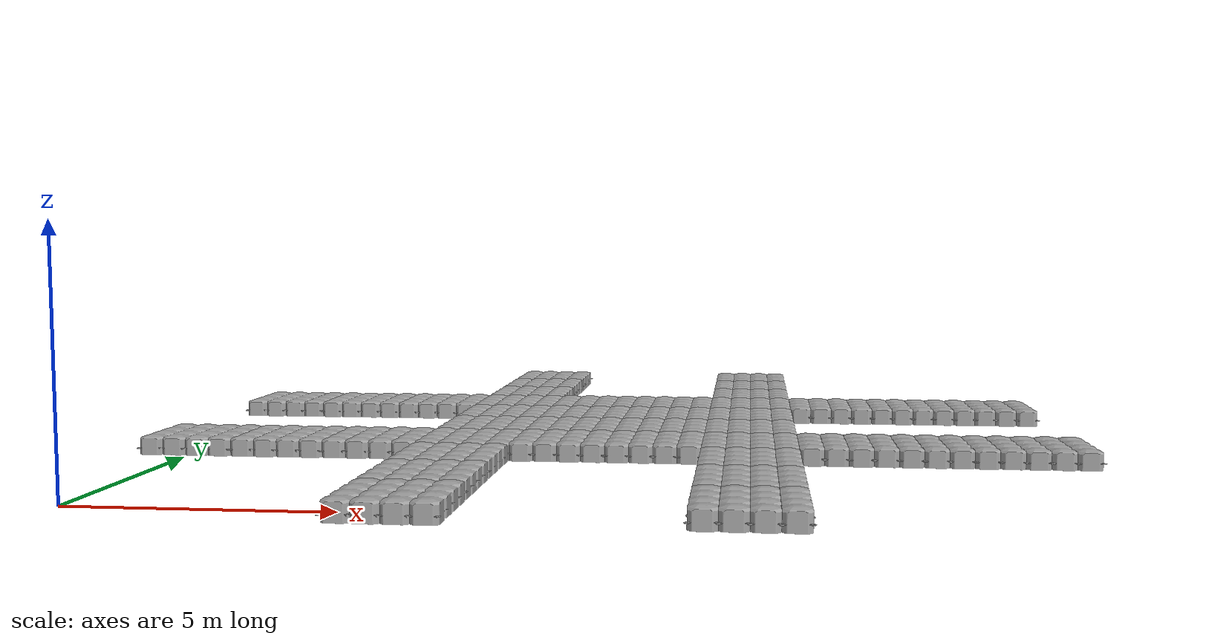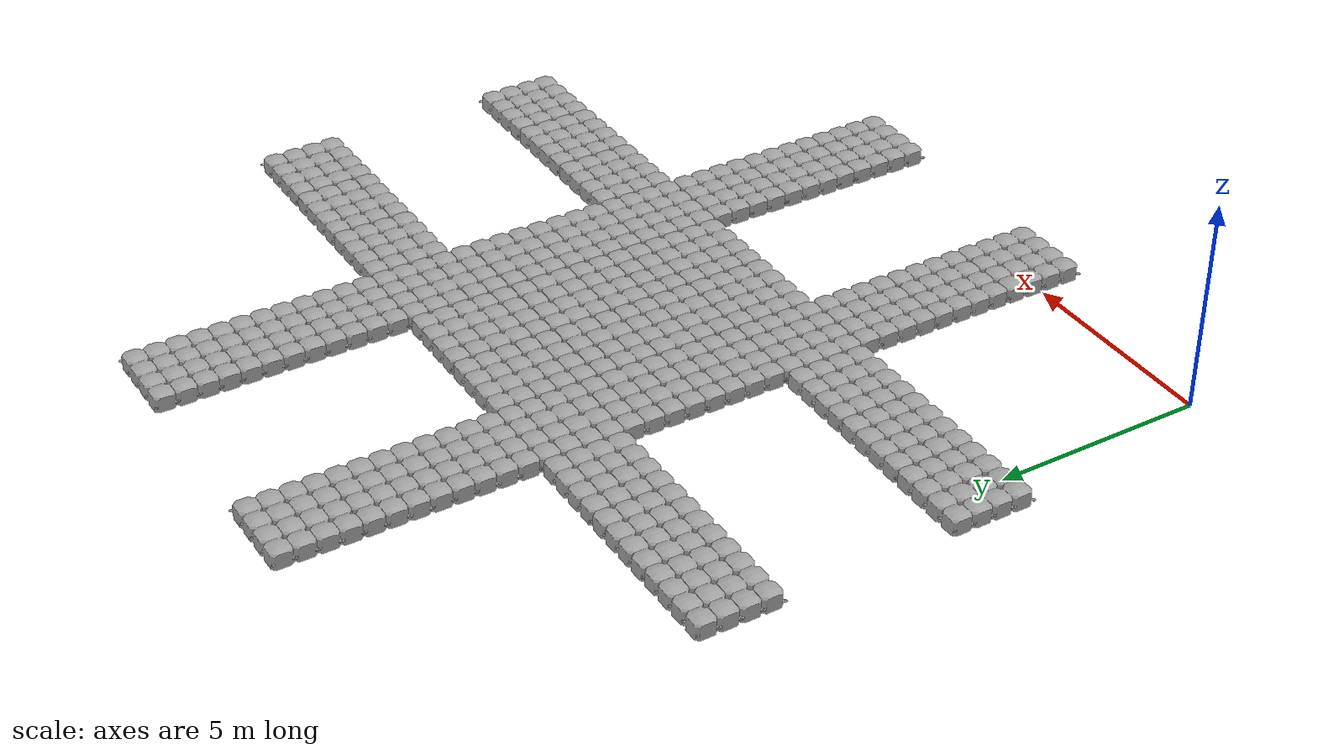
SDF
<?xml version="1.0" ?>
  <sdf version="1.6">
  <!-- Important: This file is generated. DO NOT EDIT! -->
  <model name="rxi_dock">

    <!-- Row 0 -->
    <include>
      <name>dock_block_0_3</name>
      <pose>0 6 0.25 0 0 0</pose>
        <uri>model://dock_block_4x4_dynamic</uri>
    </include>
    <include>
      <name>dock_block_0_6</name>
      <pose>0 12 0.25 0 0 0</pose>
        <uri>model://dock_block_4x4_dynamic</uri>
    </include>

    <!-- Row 1 -->
    <include>
      <name>dock_block_1_3</name>
      <pose>2 6 0.25 0 0 0</pose>
        <uri>model://dock_block_4x4_dynamic</uri>
    </include>
    <include>
      <name>dock_block_1_6</name>
      <pose>2 12 0.25 0 0 0</pose>
        <uri>model://dock_block_4x4_dynamic</uri>
    </include>

    <!-- Row 2 -->
    <include>
      <name>dock_block_2_3</name>
      <pose>4 6 0.25 0 0 0</pose>
        <uri>model://dock_block_4x4_dynamic</uri>
    </include>
    <include>
      <name>dock_block_2_6</name>
      <pose>4 12 0.25 0 0 0</pose>
        <uri>model://dock_block_4x4_dynamic</uri>
    </include>

    <!-- Row 3 -->
    <include>
      <name>dock_block_3_0</name>
      <pose>6 0 0.25 0 0 0</pose>
        <uri>model://dock_block_4x4_dynamic</uri>
    </include>
    <include>
      <name>dock_block_3_1</name>
      <pose>6 2 0.25 0 0 0</pose>
        <uri>model://dock_block_4x4_dynamic</uri>
    </include>
    <include>
      <name>dock_block_3_2</name>
      <pose>6 4 0.25 0 0 0</pose>
        <uri>model://dock_block_4x4_dynamic</uri>
    </include>
    <include>
      <name>dock_block_3_3</name>
      <pose>6 6 0.25 0 0 0</pose>
        <uri>model://dock_block_4x4_dynamic</uri>
    </include>
    <include>
      <name>dock_block_3_4</name>
      <pose>6 8 0.25 0 0 0</pose>
        <uri>model://dock_block_4x4_dynamic</uri>
    </include>
    <include>
      <name>dock_block_3_5</name>
      <pose>6 10 0.25 0 0 0</pose>
        <uri>model://dock_block_4x4_dynamic</uri>
    </include>
    <include>
      <name>dock_block_3_6</name>
      <pose>6 12 0.25 0 0 0</pose>
        <uri>model://dock_block_4x4_dynamic</uri>
    </include>
    <include>
      <name>dock_block_3_7</name>
      <pose>6 14 0.25 0 0 0</pose>
        <uri>model://dock_block_4x4_dynamic</uri>
    </include>
    <include>
      <name>dock_block_3_8</name>
      <pose>6 16 0.25 0 0 0</pose>
        <uri>model://dock_block_4x4_dynamic</uri>
    </include>
    <include>
      <name>dock_block_3_9</name>
      <pose>6 18 0.25 0 0 0</pose>
        <uri>model://dock_block_4x4_dynamic</uri>
    </include>

    <!-- Row 4 -->
    <include>
      <name>dock_block_4_3</name>
      <pose>8 6 0.25 0 0 0</pose>
        <uri>model://dock_block_4x4_dynamic</uri>
    </include>
    <include>
      <name>dock_block_4_4</name>
      <pose>8 8 0.25 0 0 0</pose>
        <uri>model://dock_block_4x4_dynamic</uri>
    </include>
    <include>
      <name>dock_block_4_5</name>
      <pose>8 10 0.25 0 0 0</pose>
        <uri>model://dock_block_4x4_dynamic</uri>
    </include>
    <include>
      <name>dock_block_4_6</name>
      <pose>8 12 0.25 0 0 0</pose>
        <uri>model://dock_block_4x4_dynamic</uri>
    </include>

    <!-- Row 5 -->
    <include>
      <name>dock_block_5_3</name>
      <pose>10 6 0.25 0 0 0</pose>
        <uri>model://dock_block_4x4_dynamic</uri>
    </include>
    <include>
      <name>dock_block_5_4</name>
      <pose>10 8 0.25 0 0 0</pose>
        <uri>model://dock_block_4x4_dynamic</uri>
    </include>
    <include>
      <name>dock_block_5_5</name>
      <pose>10 10 0.25 0 0 0</pose>
        <uri>model://dock_block_4x4_dynamic</uri>
    </include>
    <include>
      <name>dock_block_5_6</name>
      <pose>10 12 0.25 0 0 0</pose>
        <uri>model://dock_block_4x4_dynamic</uri>
    </include>

    <!-- Row 6 -->
    <include>
      <name>dock_block_6_0</name>
      <pose>12 0 0.25 0 0 0</pose>
        <uri>model://dock_block_4x4_dynamic</uri>
    </include>
    <include>
      <name>dock_block_6_1</name>
      <pose>12 2 0.25 0 0 0</pose>
        <uri>model://dock_block_4x4_dynamic</uri>
    </include>
    <include>
      <name>dock_block_6_2</name>
      <pose>12 4 0.25 0 0 0</pose>
        <uri>model://dock_block_4x4_dynamic</uri>
    </include>
    <include>
      <name>dock_block_6_3</name>
      <pose>12 6 0.25 0 0 0</pose>
        <uri>model://dock_block_4x4_dynamic</uri>
    </include>
    <include>
      <name>dock_block_6_4</name>
      <pose>12 8 0.25 0 0 0</pose>
        <uri>model://dock_block_4x4_dynamic</uri>
    </include>
    <include>
      <name>dock_block_6_5</name>
      <pose>12 10 0.25 0 0 0</pose>
        <uri>model://dock_block_4x4_dynamic</uri>
    </include>
    <include>
      <name>dock_block_6_6</name>
      <pose>12 12 0.25 0 0 0</pose>
        <uri>model://dock_block_4x4_dynamic</uri>
    </include>
    <include>
      <name>dock_block_6_7</name>
      <pose>12 14 0.25 0 0 0</pose>
        <uri>model://dock_block_4x4_dynamic</uri>
    </include>
    <include>
      <name>dock_block_6_8</name>
      <pose>12 16 0.25 0 0 0</pose>
        <uri>model://dock_block_4x4_dynamic</uri>
    </include>
    <include>
      <name>dock_block_6_9</name>
      <pose>12 18 0.25 0 0 0</pose>
        <uri>model://dock_block_4x4_dynamic</uri>
    </include>

    <!-- Row 7 -->
    <include>
      <name>dock_block_7_3</name>
      <pose>14 6 0.25 0 0 0</pose>
        <uri>model://dock_block_4x4_dynamic</uri>
    </include>
    <include>
      <name>dock_block_7_6</name>
      <pose>14 12 0.25 0 0 0</pose>
        <uri>model://dock_block_4x4_dynamic</uri>
    </include>

    <!-- Row 8 -->
    <include>
      <name>dock_block_8_3</name>
      <pose>16 6 0.25 0 0 0</pose>
        <uri>model://dock_block_4x4_dynamic</uri>
    </include>
    <include>
      <name>dock_block_8_6</name>
      <pose>16 12 0.25 0 0 0</pose>
        <uri>model://dock_block_4x4_dynamic</uri>
    </include>

    <!-- Row 9 -->
    <include>
      <name>dock_block_9_3</name>
      <pose>18 6 0.25 0 0 0</pose>
        <uri>model://dock_block_4x4_dynamic</uri>
    </include>
    <include>
      <name>dock_block_9_6</name>
      <pose>18 12 0.25 0 0 0</pose>
        <uri>model://dock_block_4x4_dynamic</uri>
    </include>

    <!-- Add joints across rows -->

    <!-- Row 0 -->

    <!-- Row 1 -->

    <!-- Row 2 -->

    <!-- Row 3 -->
    <joint name="3_0_to_3_1" type="revolute">
      <pose> 0  1.0 0 0 0 0</pose>
      <parent>dock_block_3_1::link</parent>
      <child>dock_block_3_0::link</child>
      <axis>
        <limit>
          <lower>-0.1</lower>
          <upper>0.1</upper>
        </limit>
        <xyz>1 0 0</xyz>
      </axis>
    </joint>
    <joint name="3_1_to_3_2" type="revolute">
      <pose> 0  1.0 0 0 0 0</pose>
      <parent>dock_block_3_2::link</parent>
      <child>dock_block_3_1::link</child>
      <axis>
        <limit>
          <lower>-0.1</lower>
          <upper>0.1</upper>
        </limit>
        <xyz>1 0 0</xyz>
      </axis>
    </joint>
    <joint name="3_2_to_3_3" type="revolute">
      <pose> 0  1.0 0 0 0 0</pose>
      <parent>dock_block_3_3::link</parent>
      <child>dock_block_3_2::link</child>
      <axis>
        <limit>
          <lower>-0.1</lower>
          <upper>0.1</upper>
        </limit>
        <xyz>1 0 0</xyz>
      </axis>
    </joint>
    <joint name="3_3_to_3_4" type="revolute">
      <pose> 0  1.0 0 0 0 0</pose>
      <parent>dock_block_3_4::link</parent>
      <child>dock_block_3_3::link</child>
      <axis>
        <limit>
          <lower>-0.1</lower>
          <upper>0.1</upper>
        </limit>
        <xyz>1 0 0</xyz>
      </axis>
    </joint>
    <joint name="3_4_to_3_5" type="revolute">
      <pose> 0  1.0 0 0 0 0</pose>
      <parent>dock_block_3_5::link</parent>
      <child>dock_block_3_4::link</child>
      <axis>
        <limit>
          <lower>-0.1</lower>
          <upper>0.1</upper>
        </limit>
        <xyz>1 0 0</xyz>
      </axis>
    </joint>
    <joint name="3_5_to_3_6" type="revolute">
      <pose> 0  1.0 0 0 0 0</pose>
      <parent>dock_block_3_6::link</parent>
      <child>dock_block_3_5::link</child>
      <axis>
        <limit>
          <lower>-0.1</lower>
          <upper>0.1</upper>
        </limit>
        <xyz>1 0 0</xyz>
      </axis>
    </joint>
    <joint name="3_6_to_3_7" type="revolute">
      <pose> 0  1.0 0 0 0 0</pose>
      <parent>dock_block_3_7::link</parent>
      <child>dock_block_3_6::link</child>
      <axis>
        <limit>
          <lower>-0.1</lower>
          <upper>0.1</upper>
        </limit>
        <xyz>1 0 0</xyz>
      </axis>
    </joint>
    <joint name="3_7_to_3_8" type="revolute">
      <pose> 0  1.0 0 0 0 0</pose>
      <parent>dock_block_3_8::link</parent>
      <child>dock_block_3_7::link</child>
      <axis>
        <limit>
          <lower>-0.1</lower>
          <upper>0.1</upper>
        </limit>
        <xyz>1 0 0</xyz>
      </axis>
    </joint>
    <joint name="3_8_to_3_9" type="revolute">
      <pose> 0  1.0 0 0 0 0</pose>
      <parent>dock_block_3_9::link</parent>
      <child>dock_block_3_8::link</child>
      <axis>
        <limit>
          <lower>-0.1</lower>
          <upper>0.1</upper>
        </limit>
        <xyz>1 0 0</xyz>
      </axis>
    </joint>

    <!-- Row 4 -->
    <joint name="4_3_to_4_4" type="revolute">
      <pose> 0  1.0 0 0 0 0</pose>
      <parent>dock_block_4_4::link</parent>
      <child>dock_block_4_3::link</child>
      <axis>
        <limit>
          <lower>-0.1</lower>
          <upper>0.1</upper>
        </limit>
        <xyz>1 0 0</xyz>
      </axis>
    </joint>
    <joint name="4_4_to_4_5" type="revolute">
      <pose> 0  1.0 0 0 0 0</pose>
      <parent>dock_block_4_5::link</parent>
      <child>dock_block_4_4::link</child>
      <axis>
        <limit>
          <lower>-0.1</lower>
          <upper>0.1</upper>
        </limit>
        <xyz>1 0 0</xyz>
      </axis>
    </joint>
    <joint name="4_5_to_4_6" type="revolute">
      <pose> 0  1.0 0 0 0 0</pose>
      <parent>dock_block_4_6::link</parent>
      <child>dock_block_4_5::link</child>
      <axis>
        <limit>
          <lower>-0.1</lower>
          <upper>0.1</upper>
        </limit>
        <xyz>1 0 0</xyz>
      </axis>
    </joint>

    <!-- Row 5 -->
    <joint name="5_3_to_5_4" type="revolute">
      <pose> 0  1.0 0 0 0 0</pose>
      <parent>dock_block_5_4::link</parent>
      <child>dock_block_5_3::link</child>
      <axis>
        <limit>
          <lower>-0.1</lower>
          <upper>0.1</upper>
        </limit>
        <xyz>1 0 0</xyz>
      </axis>
    </joint>
    <joint name="5_4_to_5_5" type="revolute">
      <pose> 0  1.0 0 0 0 0</pose>
      <parent>dock_block_5_5::link</parent>
      <child>dock_block_5_4::link</child>
      <axis>
        <limit>
          <lower>-0.1</lower>
          <upper>0.1</upper>
        </limit>
        <xyz>1 0 0</xyz>
      </axis>
    </joint>
    <joint name="5_5_to_5_6" type="revolute">
      <pose> 0  1.0 0 0 0 0</pose>
      <parent>dock_block_5_6::link</parent>
      <child>dock_block_5_5::link</child>
      <axis>
        <limit>
          <lower>-0.1</lower>
          <upper>0.1</upper>
        </limit>
        <xyz>1 0 0</xyz>
      </axis>
    </joint>

    <!-- Row 6 -->
    <joint name="6_0_to_6_1" type="revolute">
      <pose> 0  1.0 0 0 0 0</pose>
      <parent>dock_block_6_1::link</parent>
      <child>dock_block_6_0::link</child>
      <axis>
        <limit>
          <lower>-0.1</lower>
          <upper>0.1</upper>
        </limit>
        <xyz>1 0 0</xyz>
      </axis>
    </joint>
    <joint name="6_1_to_6_2" type="revolute">
      <pose> 0  1.0 0 0 0 0</pose>
      <parent>dock_block_6_2::link</parent>
      <child>dock_block_6_1::link</child>
      <axis>
        <limit>
          <lower>-0.1</lower>
          <upper>0.1</upper>
        </limit>
        <xyz>1 0 0</xyz>
      </axis>
    </joint>
    <joint name="6_2_to_6_3" type="revolute">
      <pose> 0  1.0 0 0 0 0</pose>
      <parent>dock_block_6_3::link</parent>
      <child>dock_block_6_2::link</child>
      <axis>
        <limit>
          <lower>-0.1</lower>
          <upper>0.1</upper>
        </limit>
        <xyz>1 0 0</xyz>
      </axis>
    </joint>
    <joint name="6_3_to_6_4" type="revolute">
      <pose> 0  1.0 0 0 0 0</pose>
      <parent>dock_block_6_4::link</parent>
      <child>dock_block_6_3::link</child>
      <axis>
        <limit>
          <lower>-0.1</lower>
          <upper>0.1</upper>
        </limit>
        <xyz>1 0 0</xyz>
      </axis>
    </joint>
    <joint name="6_4_to_6_5" type="revolute">
      <pose> 0  1.0 0 0 0 0</pose>
      <parent>dock_block_6_5::link</parent>
      <child>dock_block_6_4::link</child>
      <axis>
        <limit>
          <lower>-0.1</lower>
          <upper>0.1</upper>
        </limit>
        <xyz>1 0 0</xyz>
      </axis>
    </joint>
    <joint name="6_5_to_6_6" type="revolute">
      <pose> 0  1.0 0 0 0 0</pose>
      <parent>dock_block_6_6::link</parent>
      <child>dock_block_6_5::link</child>
      <axis>
        <limit>
          <lower>-0.1</lower>
          <upper>0.1</upper>
        </limit>
        <xyz>1 0 0</xyz>
      </axis>
    </joint>
    <joint name="6_6_to_6_7" type="revolute">
      <pose> 0  1.0 0 0 0 0</pose>
      <parent>dock_block_6_7::link</parent>
      <child>dock_block_6_6::link</child>
      <axis>
        <limit>
          <lower>-0.1</lower>
          <upper>0.1</upper>
        </limit>
        <xyz>1 0 0</xyz>
      </axis>
    </joint>
    <joint name="6_7_to_6_8" type="revolute">
      <pose> 0  1.0 0 0 0 0</pose>
      <parent>dock_block_6_8::link</parent>
      <child>dock_block_6_7::link</child>
      <axis>
        <limit>
          <lower>-0.1</lower>
          <upper>0.1</upper>
        </limit>
        <xyz>1 0 0</xyz>
      </axis>
    </joint>
    <joint name="6_8_to_6_9" type="revolute">
      <pose> 0  1.0 0 0 0 0</pose>
      <parent>dock_block_6_9::link</parent>
      <child>dock_block_6_8::link</child>
      <axis>
        <limit>
          <lower>-0.1</lower>
          <upper>0.1</upper>
        </limit>
        <xyz>1 0 0</xyz>
      </axis>
    </joint>

    <!-- Row 7 -->

    <!-- Row 8 -->

    <!-- Row 9 -->

    <!-- Add joints across columns -->

    <!-- Column 0 -->

    <!-- Column 1 -->

    <!-- Column 2 -->

    <!-- Column 3 -->
    <joint name="1_3_to_0_3" type="revolute">
      <pose> 1.0 0 0 0 0 0</pose>
      <parent>dock_block_1_3::link</parent>
      <child>dock_block_0_3::link</child>
      <axis>
        <limit>
          <lower>-0.1</lower>
          <upper>0.1</upper>
        </limit>
        <xyz>0 1 0</xyz>
      </axis>
    </joint>
    <joint name="2_3_to_1_3" type="revolute">
      <pose> 1.0 0 0 0 0 0</pose>
      <parent>dock_block_2_3::link</parent>
      <child>dock_block_1_3::link</child>
      <axis>
        <limit>
          <lower>-0.1</lower>
          <upper>0.1</upper>
        </limit>
        <xyz>0 1 0</xyz>
      </axis>
    </joint>
    <joint name="3_3_to_2_3" type="revolute">
      <pose> 1.0 0 0 0 0 0</pose>
      <parent>dock_block_3_3::link</parent>
      <child>dock_block_2_3::link</child>
      <axis>
        <limit>
          <lower>-0.1</lower>
          <upper>0.1</upper>
        </limit>
        <xyz>0 1 0</xyz>
      </axis>
    </joint>
    <joint name="4_3_to_3_3" type="revolute">
      <pose> 1.0 0 0 0 0 0</pose>
      <parent>dock_block_4_3::link</parent>
      <child>dock_block_3_3::link</child>
      <axis>
        <limit>
          <lower>-0.1</lower>
          <upper>0.1</upper>
        </limit>
        <xyz>0 1 0</xyz>
      </axis>
    </joint>
    <joint name="5_3_to_4_3" type="revolute">
      <pose> 1.0 0 0 0 0 0</pose>
      <parent>dock_block_5_3::link</parent>
      <child>dock_block_4_3::link</child>
      <axis>
        <limit>
          <lower>-0.1</lower>
          <upper>0.1</upper>
        </limit>
        <xyz>0 1 0</xyz>
      </axis>
    </joint>
    <joint name="6_3_to_5_3" type="revolute">
      <pose> 1.0 0 0 0 0 0</pose>
      <parent>dock_block_6_3::link</parent>
      <child>dock_block_5_3::link</child>
      <axis>
        <limit>
          <lower>-0.1</lower>
          <upper>0.1</upper>
        </limit>
        <xyz>0 1 0</xyz>
      </axis>
    </joint>
    <joint name="7_3_to_6_3" type="revolute">
      <pose> 1.0 0 0 0 0 0</pose>
      <parent>dock_block_7_3::link</parent>
      <child>dock_block_6_3::link</child>
      <axis>
        <limit>
          <lower>-0.1</lower>
          <upper>0.1</upper>
        </limit>
        <xyz>0 1 0</xyz>
      </axis>
    </joint>
    <joint name="8_3_to_7_3" type="revolute">
      <pose> 1.0 0 0 0 0 0</pose>
      <parent>dock_block_8_3::link</parent>
      <child>dock_block_7_3::link</child>
      <axis>
        <limit>
          <lower>-0.1</lower>
          <upper>0.1</upper>
        </limit>
        <xyz>0 1 0</xyz>
      </axis>
    </joint>
    <joint name="9_3_to_8_3" type="revolute">
      <pose> 1.0 0 0 0 0 0</pose>
      <parent>dock_block_9_3::link</parent>
      <child>dock_block_8_3::link</child>
      <axis>
        <limit>
          <lower>-0.1</lower>
          <upper>0.1</upper>
        </limit>
        <xyz>0 1 0</xyz>
      </axis>
    </joint>

    <!-- Column 4 -->
    <joint name="4_4_to_3_4" type="revolute">
      <pose> 1.0 0 0 0 0 0</pose>
      <parent>dock_block_4_4::link</parent>
      <child>dock_block_3_4::link</child>
      <axis>
        <limit>
          <lower>-0.1</lower>
          <upper>0.1</upper>
        </limit>
        <xyz>0 1 0</xyz>
      </axis>
    </joint>
    <joint name="5_4_to_4_4" type="revolute">
      <pose> 1.0 0 0 0 0 0</pose>
      <parent>dock_block_5_4::link</parent>
      <child>dock_block_4_4::link</child>
      <axis>
        <limit>
          <lower>-0.1</lower>
          <upper>0.1</upper>
        </limit>
        <xyz>0 1 0</xyz>
      </axis>
    </joint>
    <joint name="6_4_to_5_4" type="revolute">
      <pose> 1.0 0 0 0 0 0</pose>
      <parent>dock_block_6_4::link</parent>
      <child>dock_block_5_4::link</child>
      <axis>
        <limit>
          <lower>-0.1</lower>
          <upper>0.1</upper>
        </limit>
        <xyz>0 1 0</xyz>
      </axis>
    </joint>

    <!-- Column 5 -->
    <joint name="4_5_to_3_5" type="revolute">
      <pose> 1.0 0 0 0 0 0</pose>
      <parent>dock_block_4_5::link</parent>
      <child>dock_block_3_5::link</child>
      <axis>
        <limit>
          <lower>-0.1</lower>
          <upper>0.1</upper>
        </limit>
        <xyz>0 1 0</xyz>
      </axis>
    </joint>
    <joint name="5_5_to_4_5" type="revolute">
      <pose> 1.0 0 0 0 0 0</pose>
      <parent>dock_block_5_5::link</parent>
      <child>dock_block_4_5::link</child>
      <axis>
        <limit>
          <lower>-0.1</lower>
          <upper>0.1</upper>
        </limit>
        <xyz>0 1 0</xyz>
      </axis>
    </joint>
    <joint name="6_5_to_5_5" type="revolute">
      <pose> 1.0 0 0 0 0 0</pose>
      <parent>dock_block_6_5::link</parent>
      <child>dock_block_5_5::link</child>
      <axis>
        <limit>
          <lower>-0.1</lower>
          <upper>0.1</upper>
        </limit>
        <xyz>0 1 0</xyz>
      </axis>
    </joint>

    <!-- Column 6 -->
    <joint name="1_6_to_0_6" type="revolute">
      <pose> 1.0 0 0 0 0 0</pose>
      <parent>dock_block_1_6::link</parent>
      <child>dock_block_0_6::link</child>
      <axis>
        <limit>
          <lower>-0.1</lower>
          <upper>0.1</upper>
        </limit>
        <xyz>0 1 0</xyz>
      </axis>
    </joint>
    <joint name="2_6_to_1_6" type="revolute">
      <pose> 1.0 0 0 0 0 0</pose>
      <parent>dock_block_2_6::link</parent>
      <child>dock_block_1_6::link</child>
      <axis>
        <limit>
          <lower>-0.1</lower>
          <upper>0.1</upper>
        </limit>
        <xyz>0 1 0</xyz>
      </axis>
    </joint>
    <joint name="3_6_to_2_6" type="revolute">
      <pose> 1.0 0 0 0 0 0</pose>
      <parent>dock_block_3_6::link</parent>
      <child>dock_block_2_6::link</child>
      <axis>
        <limit>
          <lower>-0.1</lower>
          <upper>0.1</upper>
        </limit>
        <xyz>0 1 0</xyz>
      </axis>
    </joint>
    <joint name="4_6_to_3_6" type="revolute">
      <pose> 1.0 0 0 0 0 0</pose>
      <parent>dock_block_4_6::link</parent>
      <child>dock_block_3_6::link</child>
      <axis>
        <limit>
          <lower>-0.1</lower>
          <upper>0.1</upper>
        </limit>
        <xyz>0 1 0</xyz>
      </axis>
    </joint>
    <joint name="5_6_to_4_6" type="revolute">
      <pose> 1.0 0 0 0 0 0</pose>
      <parent>dock_block_5_6::link</parent>
      <child>dock_block_4_6::link</child>
      <axis>
        <limit>
          <lower>-0.1</lower>
          <upper>0.1</upper>
        </limit>
        <xyz>0 1 0</xyz>
      </axis>
    </joint>
    <joint name="6_6_to_5_6" type="revolute">
      <pose> 1.0 0 0 0 0 0</pose>
      <parent>dock_block_6_6::link</parent>
      <child>dock_block_5_6::link</child>
      <axis>
        <limit>
          <lower>-0.1</lower>
          <upper>0.1</upper>
        </limit>
        <xyz>0 1 0</xyz>
      </axis>
    </joint>
    <joint name="7_6_to_6_6" type="revolute">
      <pose> 1.0 0 0 0 0 0</pose>
      <parent>dock_block_7_6::link</parent>
      <child>dock_block_6_6::link</child>
      <axis>
        <limit>
          <lower>-0.1</lower>
          <upper>0.1</upper>
        </limit>
        <xyz>0 1 0</xyz>
      </axis>
    </joint>
    <joint name="8_6_to_7_6" type="revolute">
      <pose> 1.0 0 0 0 0 0</pose>
      <parent>dock_block_8_6::link</parent>
      <child>dock_block_7_6::link</child>
      <axis>
        <limit>
          <lower>-0.1</lower>
          <upper>0.1</upper>
        </limit>
        <xyz>0 1 0</xyz>
      </axis>
    </joint>
    <joint name="9_6_to_8_6" type="revolute">
      <pose> 1.0 0 0 0 0 0</pose>
      <parent>dock_block_9_6::link</parent>
      <child>dock_block_8_6::link</child>
      <axis>
        <limit>
          <lower>-0.1</lower>
          <upper>0.1</upper>
        </limit>
        <xyz>0 1 0</xyz>
      </axis>
    </joint>

    <!-- Column 7 -->

    <!-- Column 8 -->

    <!-- Column 9 -->

  </model>
</sdf>

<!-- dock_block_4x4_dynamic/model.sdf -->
<sdf version="1.5">
  <model name="dock_block_4x4">
    <static>false</static>
    <link name="link">
      <velocity_decay>
        <linear>0.001</linear>
        <angular>0.001</angular>
      </velocity_decay>
       <inertial>
        <pose>0 0 0 0 0 0</pose>
        <mass>160</mass>
        <inertia>
          <ixx>55.467</ixx>
          <ixy>0</ixy>
          <ixz>0</ixz>
          <iyy>55.467</iyy>
          <iyz>0</iyz>
          <izz>106.67</izz>
        </inertia>
      </inertial>
      <collision name="collision">
        <pose>0 0 0 0 0 0</pose>
        <geometry>
          <box>
            <size>2 2 0.4</size>
          </box>
        </geometry>
      </collision>
      <visual name="visual">
        <pose>-0.25 0.25 0.2 0 0 0 </pose>
        <geometry>
          <mesh>
            <uri>file://dock_block_4x4/mesh/dock_block_4x4.dae</uri>
          </mesh>
        </geometry>
      </visual>
    </link>
    <plugin name="BuoyancyPlugin" filename="libbuoyancy_gazebo_plugin.so">
      <wave_model>ocean_waves</wave_model>
      <fluid_density>1000</fluid_density>
      <fluid_level>0</fluid_level>
      <linear_drag>1000.0</linear_drag>
      <angular_drag>200.0</angular_drag>
      <buoyancy name="buoyancy_base">
        <link_name>link</link_name>
      	<pose>0 0 0.35 0 0 0</pose>
        <geometry>
					<sphere>
            <radius>0.72557</radius>
          </sphere>
				</geometry>
      </buoyancy>
    </plugin>
  </model>
</sdf>
